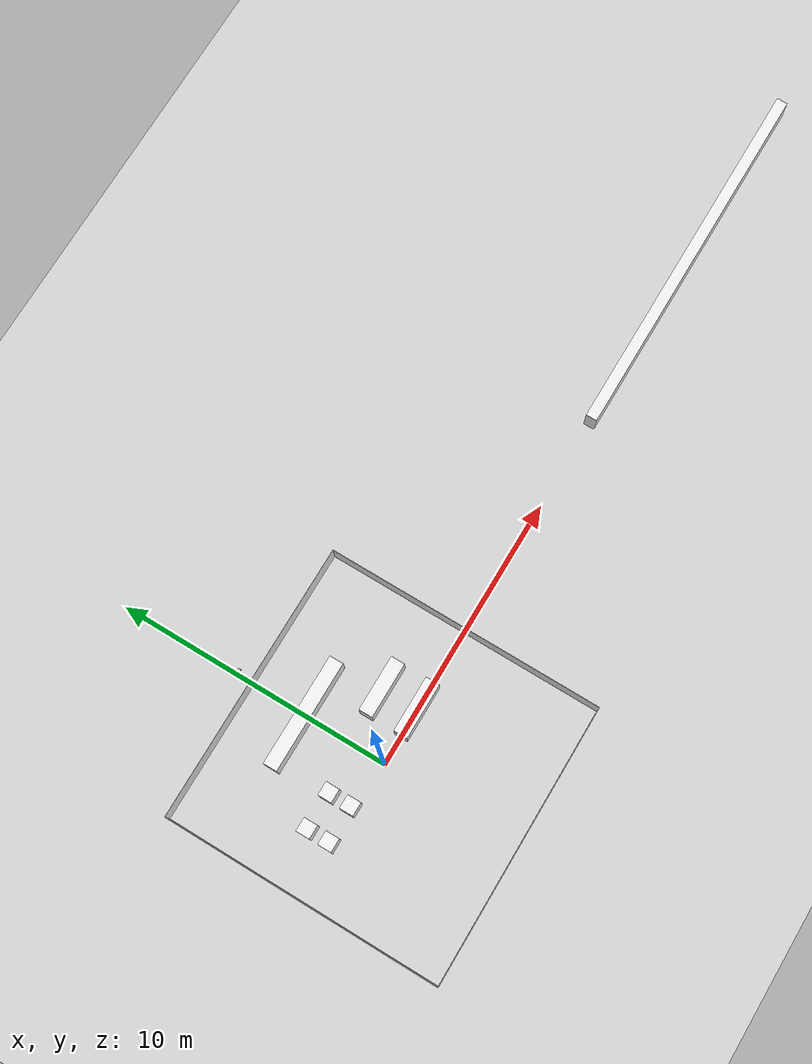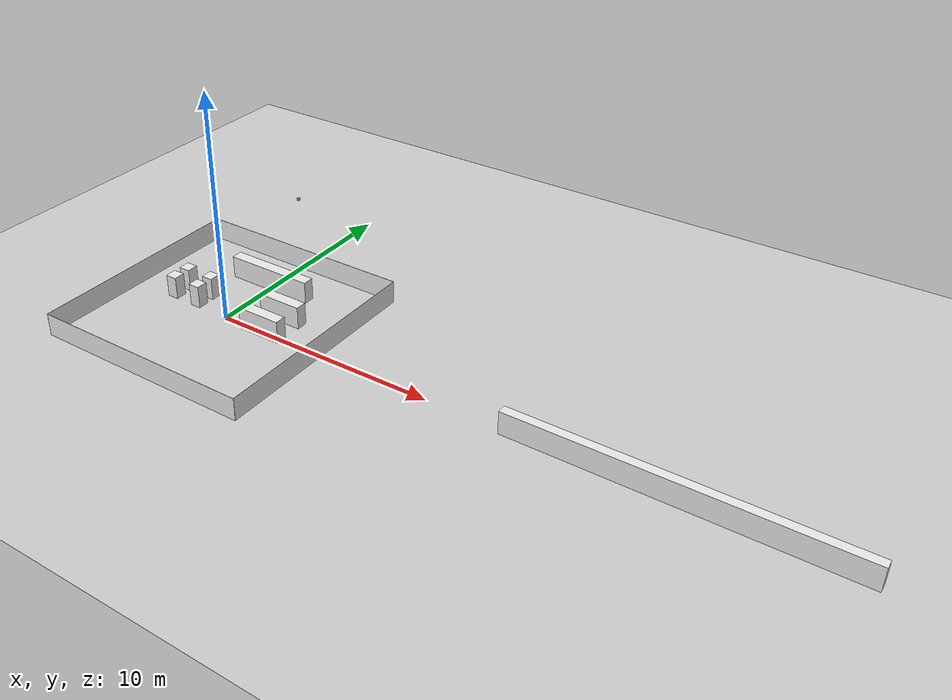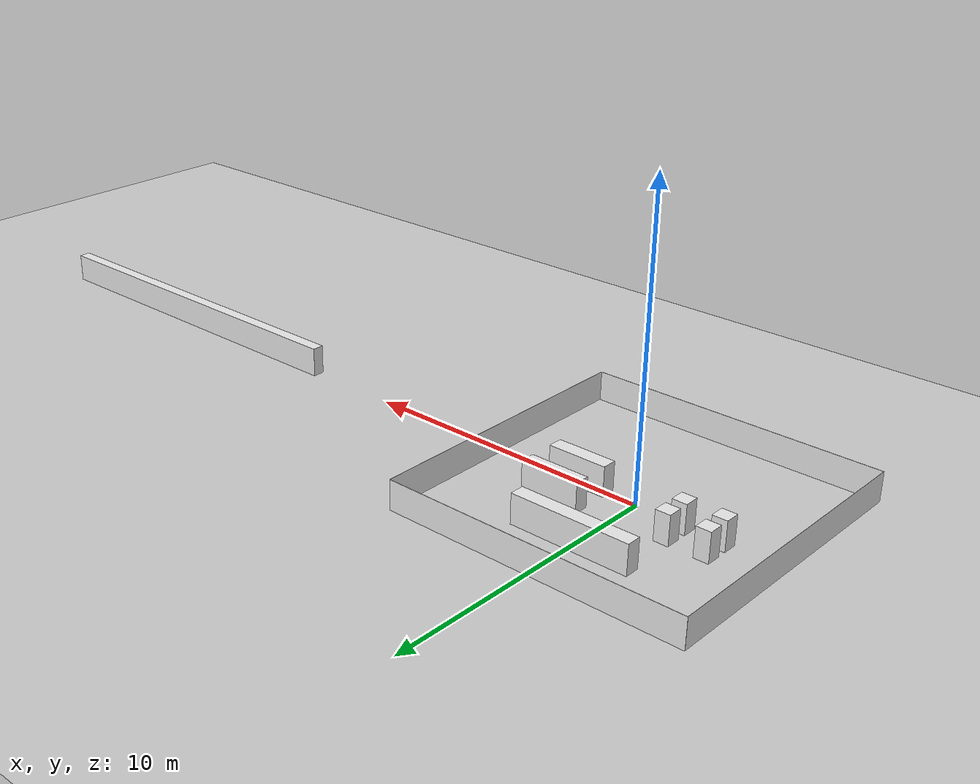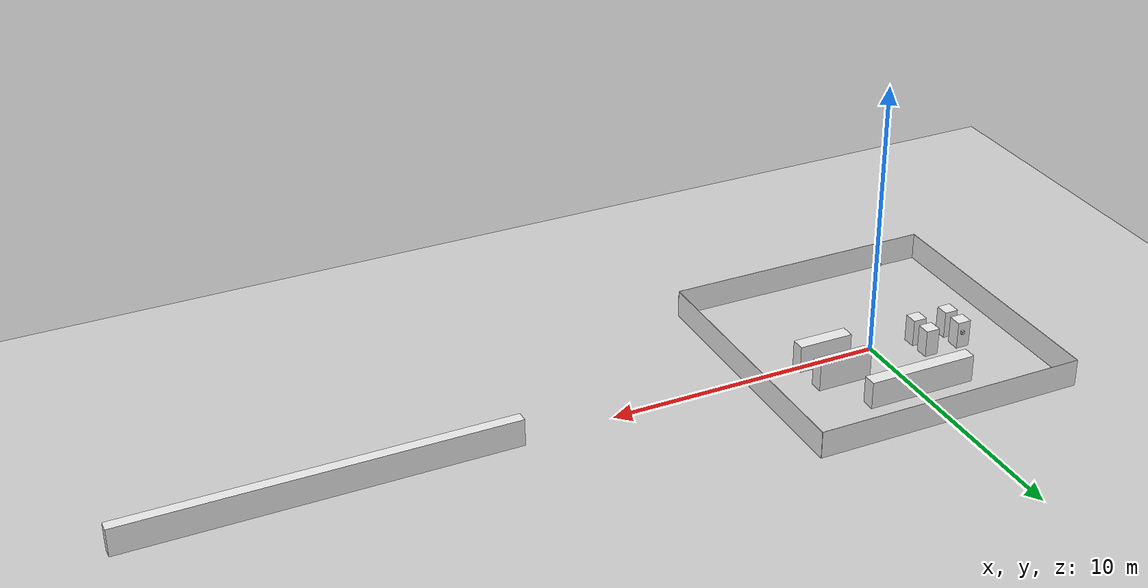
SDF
<sdf version="1.6">
 <world name="default">
  <light name="sun" type="directional">
   <cast_shadows>0</cast_shadows>
   <pose>0 0 10 0 -0 0</pose>
   <diffuse>0.8 0.8 0.8 1</diffuse>
   <specular>0.2 0.2 0.2 1</specular>
   <attenuation>
    <range>1000</range>
    <constant>0.9</constant>
    <linear>0.01</linear>
    <quadratic>0.001</quadratic>
   </attenuation>
   <direction>-0.5 0.1 -0.9</direction>
  </light>
  <model name="ground_plane">
   <pose>5 0 0 0 -0 1.57</pose>
   <static>1</static>
   <link name="link">
    <collision name="collision">
     <geometry><plane><normal>0 0 1</normal><size>100 100</size></plane></geometry>
     <surface>
      <contact><collide_bitmask>65535</collide_bitmask></contact>
      <friction><ode><mu>100</mu><mu2>50</mu2></ode></friction>
     </surface>
    </collision>
    <visual name="visual">
     <cast_shadows>0</cast_shadows>
     <geometry><plane><normal>0 0 1</normal><size>100 100</size></plane></geometry>
     <material>
      <script><uri>file://media/materials/scripts/gazebo.material</uri><name>Gazebo/Grey</name></script>
     </material>
    </visual>
   </link>
  </model>
  <gravity>0 0 -9.8</gravity>
  <magnetic_field>6e-06 2.3e-05 -4.2e-05</magnetic_field>
  <atmosphere type="adiabatic"/>
  <physics name="default_physics" default="0" type="ode">
   <max_step_size>0.001</max_step_size>
   <real_time_factor>1</real_time_factor>
   <real_time_update_rate>1000</real_time_update_rate>
  </physics>
  <scene><ambient>0.4 0.4 0.4 1</ambient><background>0.7 0.7 0.7 1</background><shadows>0</shadows></scene>
  <audio><device>default</device></audio>
  <spherical_coordinates>
   <surface_model>EARTH_WGS84</surface_model>
   <latitude_deg>0</latitude_deg>
   <longitude_deg>0</longitude_deg>
   <elevation>0</elevation>
   <heading_deg>0</heading_deg>
  </spherical_coordinates>
  <model name="table_cube_0">
   <link name="link">
    <pose>0 0 0.5 0 -0 0</pose>
    <inertial>
     <mass>10</mass>
     <inertia><ixx>0.17</ixx><ixy>0</ixy><ixz>0</ixz><iyy>0.17</iyy><iyz>0</iyz><izz>0.17</izz></inertia>
    </inertial>
    <collision name="collision">
     <geometry><box><size>10 0.01 1</size></box></geometry>
     <surface>
      <contact>
       <poissons_ratio>0.347</poissons_ratio>
       <elastic_modulus>8.8e+09</elastic_modulus>
       <ode><kp>100000</kp><kd>100</kd><max_vel>100</max_vel><min_depth>0.001</min_depth></ode>
      </contact>
     </surface>
    </collision>
    <visual name="visual">
     <geometry><box><size>10 0.01 1</size></box></geometry>
     <material>
      <script><uri>file://media/materials/scripts/gazebo.material</uri><name>Gazebo/White</name></script>
     </material>
    </visual>
   </link>
   <static>1</static>
   <pose>0 -5 0 0 -0 0</pose>
  </model>
  <model name="table_cube_1">
   <link name="link">
    <pose>0 0 0.5 0 -0 0</pose>
    <inertial>
     <mass>10</mass>
     <inertia><ixx>0.17</ixx><ixy>0</ixy><ixz>0</ixz><iyy>0.17</iyy><iyz>0</iyz><izz>0.17</izz></inertia>
    </inertial>
    <collision name="collision">
     <geometry><box><size>10 0.01 1</size></box></geometry>
     <surface>
      <contact>
       <poissons_ratio>0.347</poissons_ratio>
       <elastic_modulus>8.8e+09</elastic_modulus>
       <ode><kp>100000</kp><kd>100</kd><max_vel>100</max_vel><min_depth>0.001</min_depth></ode>
      </contact>
     </surface>
    </collision>
    <visual name="visual">
     <geometry><box><size>10 0.01 1</size></box></geometry>
     <material>
      <script><uri>file://media/materials/scripts/gazebo.material</uri><name>Gazebo/White</name></script>
     </material>
    </visual>
   </link>
   <static>1</static>
   <pose>-5 0 0 0 -0 1.57</pose>
  </model>
  <model name="table_cube_2">
   <link name="link">
    <pose>0 0 0.5 0 -0 0</pose>
    <inertial>
     <mass>10</mass>
     <inertia><ixx>0.17</ixx><ixy>0</ixy><ixz>0</ixz><iyy>0.17</iyy><iyz>0</iyz><izz>0.17</izz></inertia>
    </inertial>
    <collision name="collision">
     <geometry><box><size>10 0.01 1</size></box></geometry>
     <surface>
      <contact>
       <poissons_ratio>0.347</poissons_ratio>
       <elastic_modulus>8.8e+09</elastic_modulus>
       <ode><kp>100000</kp><kd>100</kd><max_vel>100</max_vel><min_depth>0.001</min_depth></ode>
      </contact>
     </surface>
    </collision>
    <visual name="visual">
     <geometry><box><size>10 0.01 1</size></box></geometry>
     <material>
      <script><uri>file://media/materials/scripts/gazebo.material</uri><name>Gazebo/White</name></script>
     </material>
    </visual>
   </link>
   <static>1</static>
   <pose>0 5 0 0 -0 0</pose>
  </model>
  <model name="table_cube_4">
   <link name="link">
    <pose>0 0 0.5 0 -0 0</pose>
    <inertial>
     <mass>10</mass>
     <inertia><ixx>0.17</ixx><ixy>0</ixy><ixz>0</ixz><iyy>0.17</iyy><iyz>0</iyz><izz>0.17</izz></inertia>
    </inertial>
    <collision name="collision">
     <geometry><box><size>10 0.01 1</size></box></geometry>
     <surface>
      <contact>
       <poissons_ratio>0.347</poissons_ratio>
       <elastic_modulus>8.8e+09</elastic_modulus>
       <ode><kp>100000</kp><kd>100</kd><max_vel>100</max_vel><min_depth>0.001</min_depth></ode>
      </contact>
     </surface>
    </collision>
    <visual name="visual">
     <geometry><box><size>10 0.01 1</size></box></geometry>
     <material>
      <script><uri>file://media/materials/scripts/gazebo.material</uri><name>Gazebo/White</name></script>
     </material>
    </visual>
   </link>
   <static>1</static>
   <pose>5 0 0 0 -0 1.57</pose>
  </model>
  <model name="table_cube_3">
   <link name="link">
    <pose>0 0 0.5 0 -0 0</pose>
    <inertial>
     <mass>10</mass>
     <inertia><ixx>0.17</ixx><ixy>0</ixy><ixz>0</ixz><iyy>0.17</iyy><iyz>0</iyz><izz>0.17</izz></inertia>
    </inertial>
    <collision name="collision">
     <geometry><box><size>13.5 0.4 1</size></box></geometry>
     <surface>
      <contact>
       <poissons_ratio>0.347</poissons_ratio>
       <elastic_modulus>8.8e+09</elastic_modulus>
       <ode><kp>100000</kp><kd>100</kd><max_vel>100</max_vel><min_depth>0.001</min_depth></ode>
      </contact>
     </surface>
    </collision>
    <visual name="visual">
     <geometry><box><size>13.5 0.4 1</size></box></geometry>
     <material>
      <script><uri>file://media/materials/scripts/gazebo.material</uri><name>Gazebo/White</name></script>
     </material>
    </visual>
   </link>
   <static>1</static>
   <pose>20 0 0 0 -0 0</pose>
  </model>
  <model name="distorted_camera1">
   <link name="link">
    <pose>0.05 0.05 0.05 0 -0 0</pose>
    <inertial>
     <mass>0.1</mass>
     <inertia>
      <ixx>0.000166667</ixx>
      <iyy>0.000166667</iyy>
      <izz>0.000166667</izz>
      <ixy>0</ixy>
      <ixz>0</ixz>
      <iyz>0</iyz>
     </inertia>
    </inertial>
    <collision name="collision"><geometry><box><size>0.1 0.1 0.1</size></box></geometry></collision>
    <visual name="visual"><geometry><box><size>0.1 0.1 0.1</size></box></geometry></visual>
    <gravity>0</gravity>
    <sensor name="camera" type="camera">
     <camera name="__default__">
      <horizontal_fov>1.047</horizontal_fov>
      <image><width>512</width><height>512</height></image>
      <clip><near>0.1</near><far>100</far></clip>
     </camera>
     <plugin name="camera_controller" filename="libgazebo_ros_camera.so">
      <alwaysOn>1</alwaysOn>
      <updateRate>0.0</updateRate>
      <cameraName>top_down_cam</cameraName>
      <imageTopicName>image_high</imageTopicName>
      <cameraInfoTopicName>camera_info</cameraInfoTopicName>
      <frameName>camera_link</frameName>
      <hackBaseline>0.07</hackBaseline>
      <distortionK1>0.0</distortionK1>
      <distortionK2>0.0</distortionK2>
      <distortionK3>0.0</distortionK3>
      <distortionT1>0.0</distortionT1>
      <distortionT2>0.0</distortionT2>
     </plugin>
     <always_on>1</always_on>
     <update_rate>30</update_rate>
     <visualize>1</visualize>
    </sensor>
   </link>
   <pose>0 5 3.46489 0 1.57 1.57</pose>
  </model>
  <model name="distorted_camera">
   <link name="link">
    <pose>0.05 0.05 0.05 0 -0 0</pose>
    <inertial>
     <mass>0.1</mass>
     <inertia>
      <ixx>0.000166667</ixx>
      <iyy>0.000166667</iyy>
      <izz>0.000166667</izz>
      <ixy>0</ixy>
      <ixz>0</ixz>
      <iyz>0</iyz>
     </inertia>
    </inertial>
    <collision name="collision"><geometry><box><size>0.1 0.1 0.1</size></box></geometry></collision>
    <visual name="visual"><geometry><box><size>0.1 0.1 0.1</size></box></geometry></visual>
    <gravity>0</gravity>
    <sensor name="camera" type="camera">
     <camera name="__default__">
      <horizontal_fov>1.047</horizontal_fov>
      <image><width>64</width><height>64</height></image>
      <clip><near>0.1</near><far>100</far></clip>
     </camera>
     <plugin name="camera_controller" filename="libgazebo_ros_camera.so">
      <alwaysOn>1</alwaysOn>
      <updateRate>0.0</updateRate>
      <cameraName>top_down_cam</cameraName>
      <imageTopicName>image_raw</imageTopicName>
      <cameraInfoTopicName>camera_info</cameraInfoTopicName>
      <frameName>camera_link</frameName>
      <hackBaseline>0.07</hackBaseline>
      <distortionK1>0.0</distortionK1>
      <distortionK2>0.0</distortionK2>
      <distortionK3>0.0</distortionK3>
      <distortionT1>0.0</distortionT1>
      <distortionT2>0.0</distortionT2>
     </plugin>
     <always_on>1</always_on>
     <update_rate>30</update_rate>
     <visualize>1</visualize>
    </sensor>
   </link>
   <pose>0 0 3.46489 0 1.57 1.57</pose>
  </model>
  <model name="table_cube_0_0">
   <link name="link">
    <pose>0 0 0.5 0 -0 0</pose>
    <inertial>
     <mass>10</mass>
     <inertia><ixx>0.17</ixx><ixy>0</ixy><ixz>0</ixz><iyy>0.17</iyy><iyz>0</iyz><izz>0.17</izz></inertia>
    </inertial>
    <collision name="collision">
     <geometry><box><size>4 0.5 1</size></box></geometry>
     <surface>
      <contact>
       <poissons_ratio>0.347</poissons_ratio>
       <elastic_modulus>8.8e+09</elastic_modulus>
       <ode><kp>100000</kp><kd>100</kd><max_vel>100</max_vel><min_depth>0.001</min_depth></ode>
      </contact>
     </surface>
    </collision>
    <visual name="visual">
     <geometry><box><size>4 0.5 1</size></box></geometry>
     <material>
      <script><uri>file://media/materials/scripts/gazebo.material</uri><name>Gazebo/White</name></script>
     </material>
    </visual>
   </link>
   <static>1</static>
   <pose>0 3 0 0 -0 0</pose>
  </model>
  <model name="table_cube_0_1">
   <link name="link">
    <pose>0 0 0.5 0 -0 0</pose>
    <inertial>
     <mass>10</mass>
     <inertia><ixx>0.17</ixx><ixy>0</ixy><ixz>0</ixz><iyy>0.17</iyy><iyz>0</iyz><izz>0.17</izz></inertia>
    </inertial>
    <collision name="collision">
     <geometry><box><size>0.5 0.5 1</size></box></geometry>
     <surface>
      <contact>
       <poissons_ratio>0.347</poissons_ratio>
       <elastic_modulus>8.8e+09</elastic_modulus>
       <ode><kp>100000</kp><kd>100</kd><max_vel>100</max_vel><min_depth>0.001</min_depth></ode>
      </contact>
     </surface>
    </collision>
    <visual name="visual">
     <geometry><box><size>0.5 0.5 1</size></box></geometry>
     <material>
      <script><uri>file://media/materials/scripts/gazebo.material</uri><name>Gazebo/White</name></script>
     </material>
    </visual>
   </link>
   <static>1</static>
   <pose>-1.7 1 0 0 -0 0</pose>
  </model>
  <model name="table_cube_0_1_clone">
   <link name="link">
    <pose>0 0 0.5 0 -0 0</pose>
    <inertial>
     <mass>10</mass>
     <inertia><ixx>0.17</ixx><ixy>0</ixy><ixz>0</ixz><iyy>0.17</iyy><iyz>0</iyz><izz>0.17</izz></inertia>
    </inertial>
    <collision name="collision">
     <geometry><box><size>0.5 0.5 1</size></box></geometry>
     <surface>
      <contact>
       <poissons_ratio>0.347</poissons_ratio>
       <elastic_modulus>8.8e+09</elastic_modulus>
       <ode><kp>100000</kp><kd>100</kd><max_vel>100</max_vel><min_depth>0.001</min_depth></ode>
      </contact>
     </surface>
    </collision>
    <visual name="visual">
     <geometry><box><size>0.5 0.5 1</size></box></geometry>
     <material>
      <script><uri>file://media/materials/scripts/gazebo.material</uri><name>Gazebo/White</name></script>
     </material>
    </visual>
   </link>
   <static>1</static>
   <pose>-3 1 0 0 -0 0</pose>
  </model>
  <model name="table_cube_0_1_clone_0">
   <link name="link">
    <pose>0 0 0.5 0 -0 0</pose>
    <inertial>
     <mass>10</mass>
     <inertia><ixx>0.17</ixx><ixy>0</ixy><ixz>0</ixz><iyy>0.17</iyy><iyz>0</iyz><izz>0.17</izz></inertia>
    </inertial>
    <collision name="collision">
     <geometry><box><size>0.5 0.5 1</size></box></geometry>
     <surface>
      <contact>
       <poissons_ratio>0.347</poissons_ratio>
       <elastic_modulus>8.8e+09</elastic_modulus>
       <ode><kp>100000</kp><kd>100</kd><max_vel>100</max_vel><min_depth>0.001</min_depth></ode>
      </contact>
     </surface>
    </collision>
    <visual name="visual">
     <geometry><box><size>0.5 0.5 1</size></box></geometry>
     <material>
      <script><uri>file://media/materials/scripts/gazebo.material</uri><name>Gazebo/White</name></script>
     </material>
    </visual>
   </link>
   <static>1</static>
   <pose>-3 0.2 0 0 -0 0</pose>
  </model>
  <model name="table_cube_0_1_clone_0_clone">
   <link name="link">
    <pose>0 0 0.5 0 -0 0</pose>
    <inertial>
     <mass>10</mass>
     <inertia><ixx>0.17</ixx><ixy>0</ixy><ixz>0</ixz><iyy>0.17</iyy><iyz>0</iyz><izz>0.17</izz></inertia>
    </inertial>
    <collision name="collision">
     <geometry><box><size>0.5 0.5 1</size></box></geometry>
     <surface>
      <contact>
       <poissons_ratio>0.347</poissons_ratio>
       <elastic_modulus>8.8e+09</elastic_modulus>
       <ode><kp>100000</kp><kd>100</kd><max_vel>100</max_vel><min_depth>0.001</min_depth></ode>
      </contact>
     </surface>
    </collision>
    <visual name="visual">
     <geometry><box><size>0.5 0.5 1</size></box></geometry>
     <material>
      <script><uri>file://media/materials/scripts/gazebo.material</uri><name>Gazebo/White</name></script>
     </material>
    </visual>
   </link>
   <static>1</static>
   <pose>-1.7 0.2 0 0 -0 0</pose>
  </model>
  <model name="table_cube_0_2">
   <link name="link">
    <pose>0 0 0.5 0 -0 0</pose>
    <inertial>
     <mass>10</mass>
     <inertia><ixx>0.17</ixx><ixy>0</ixy><ixz>0</ixz><iyy>0.17</iyy><iyz>0</iyz><izz>0.17</izz></inertia>
    </inertial>
    <collision name="collision">
     <geometry><box><size>2 0.5 1</size></box></geometry>
     <surface>
      <contact>
       <poissons_ratio>0.347</poissons_ratio>
       <elastic_modulus>8.8e+09</elastic_modulus>
       <ode><kp>100000</kp><kd>100</kd><max_vel>100</max_vel><min_depth>0.001</min_depth></ode>
      </contact>
     </surface>
    </collision>
    <visual name="visual">
     <geometry><box><size>2 0.5 1</size></box></geometry>
     <material>
      <script><uri>file://media/materials/scripts/gazebo.material</uri><name>Gazebo/White</name></script>
     </material>
    </visual>
   </link>
   <static>1</static>
   <pose>2 1.3 0 0 -0 0</pose>
  </model>
  <model name="table_cube_0_2_clone">
   <link name="link">
    <pose>0 0 0.5 0 -0 0</pose>
    <inertial>
     <mass>10</mass>
     <inertia><ixx>0.17</ixx><ixy>0</ixy><ixz>0</ixz><iyy>0.17</iyy><iyz>0</iyz><izz>0.17</izz></inertia>
    </inertial>
    <collision name="collision">
     <geometry><box><size>2 0.5 1</size></box></geometry>
     <surface>
      <contact>
       <poissons_ratio>0.347</poissons_ratio>
       <elastic_modulus>8.8e+09</elastic_modulus>
       <ode><kp>100000</kp><kd>100</kd><max_vel>100</max_vel><min_depth>0.001</min_depth></ode>
      </contact>
     </surface>
    </collision>
    <visual name="visual">
     <geometry><box><size>2 0.5 1</size></box></geometry>
     <material>
      <script><uri>file://media/materials/scripts/gazebo.material</uri><name>Gazebo/White</name></script>
     </material>
    </visual>
   </link>
   <static>1</static>
   <pose>2 0 0 0 -0 0</pose>
  </model>
 </world>
</sdf>
